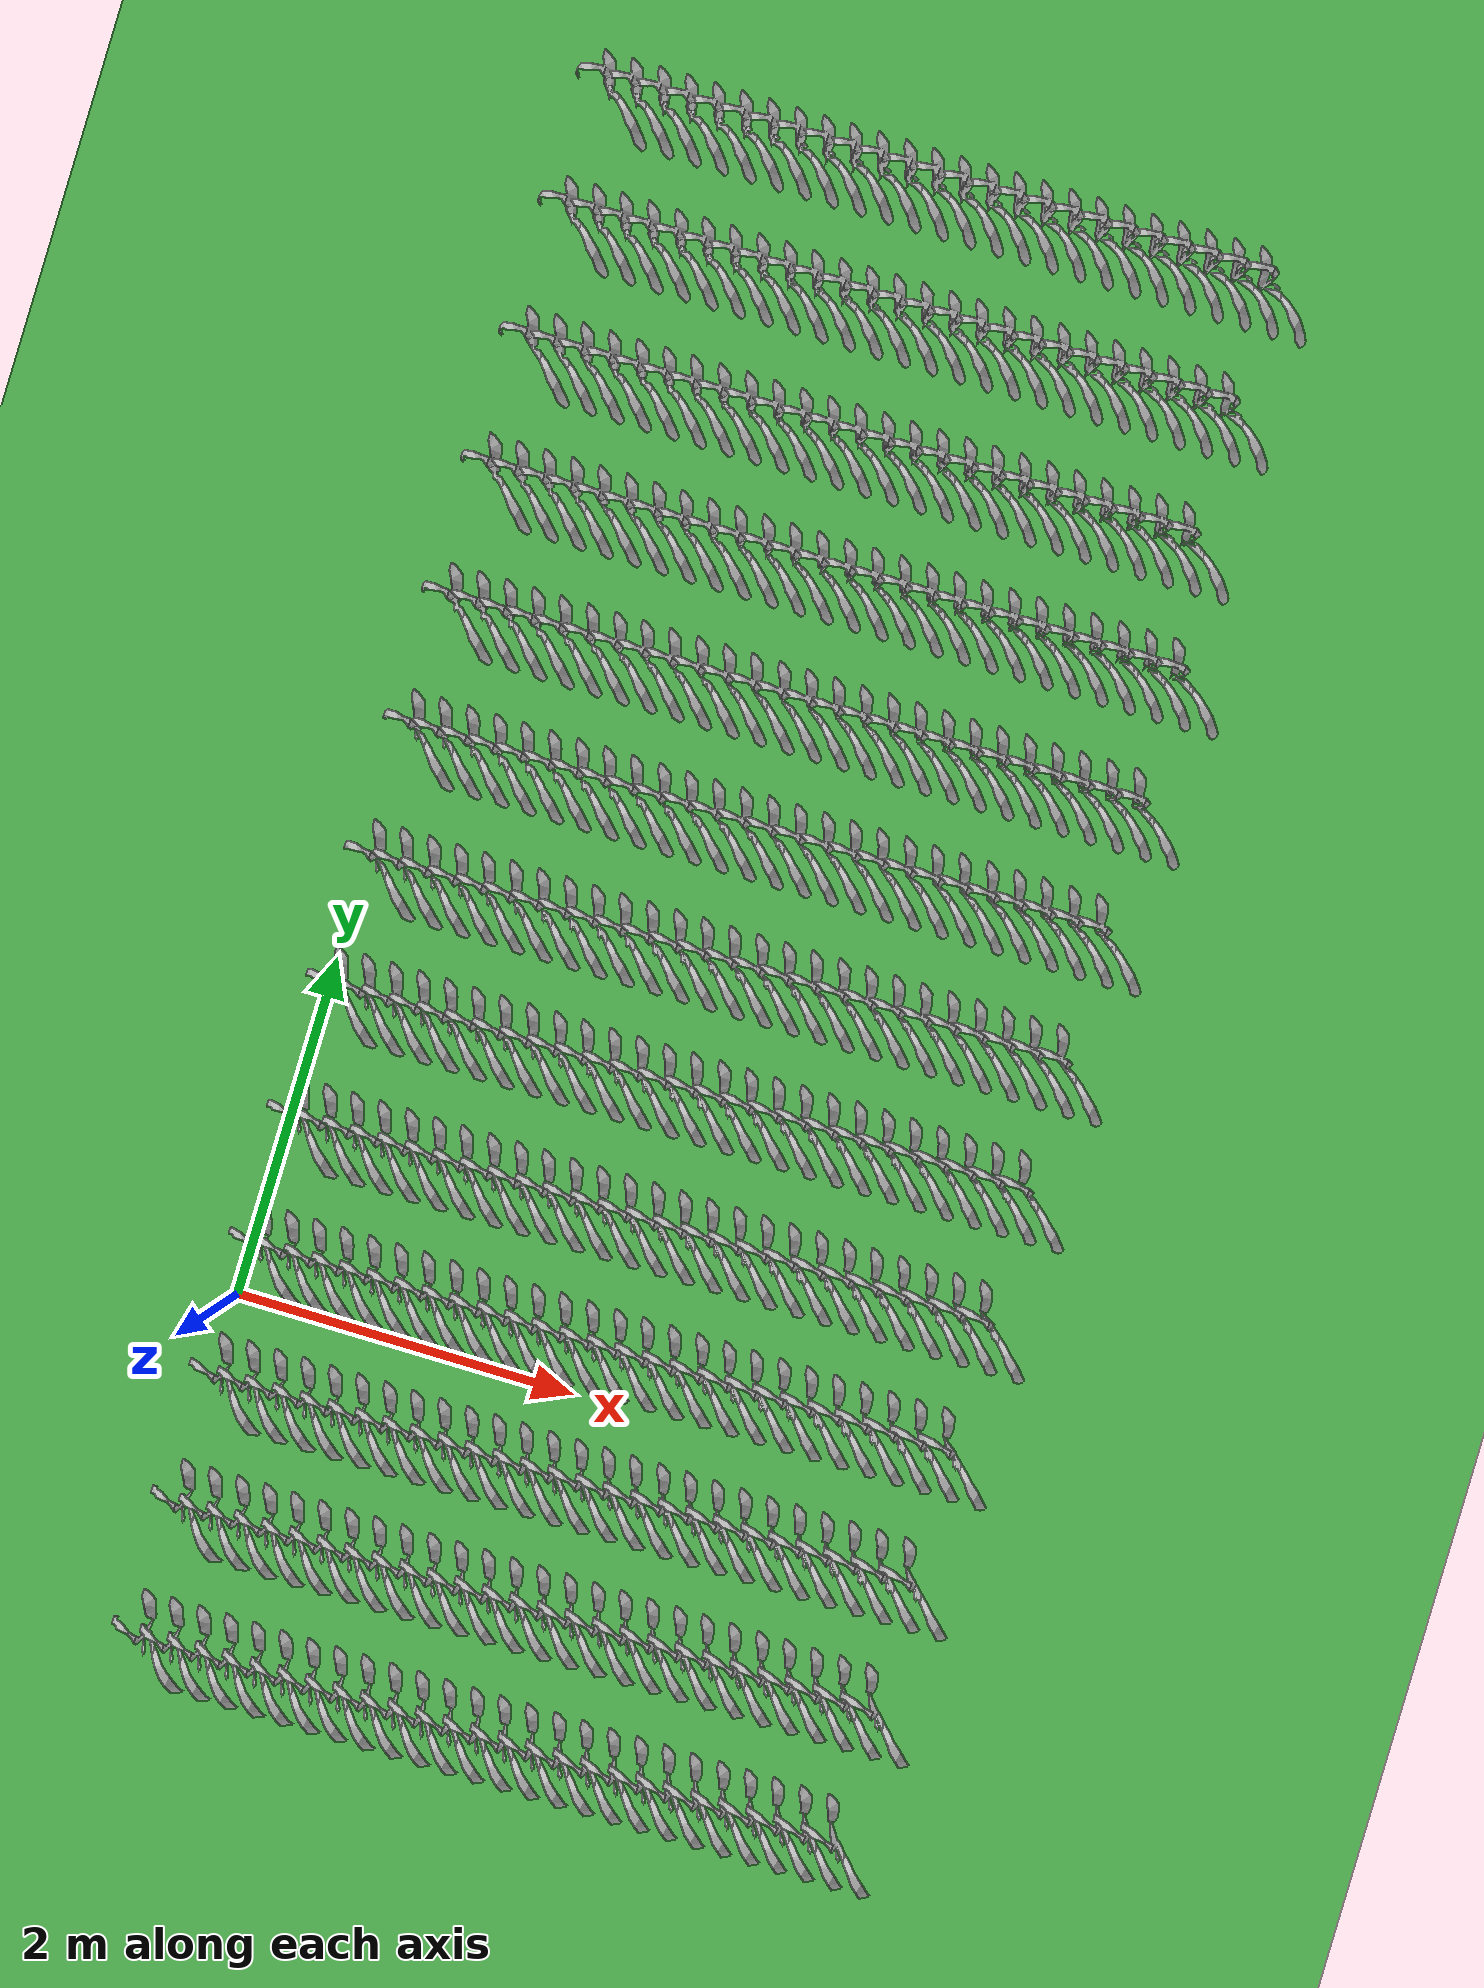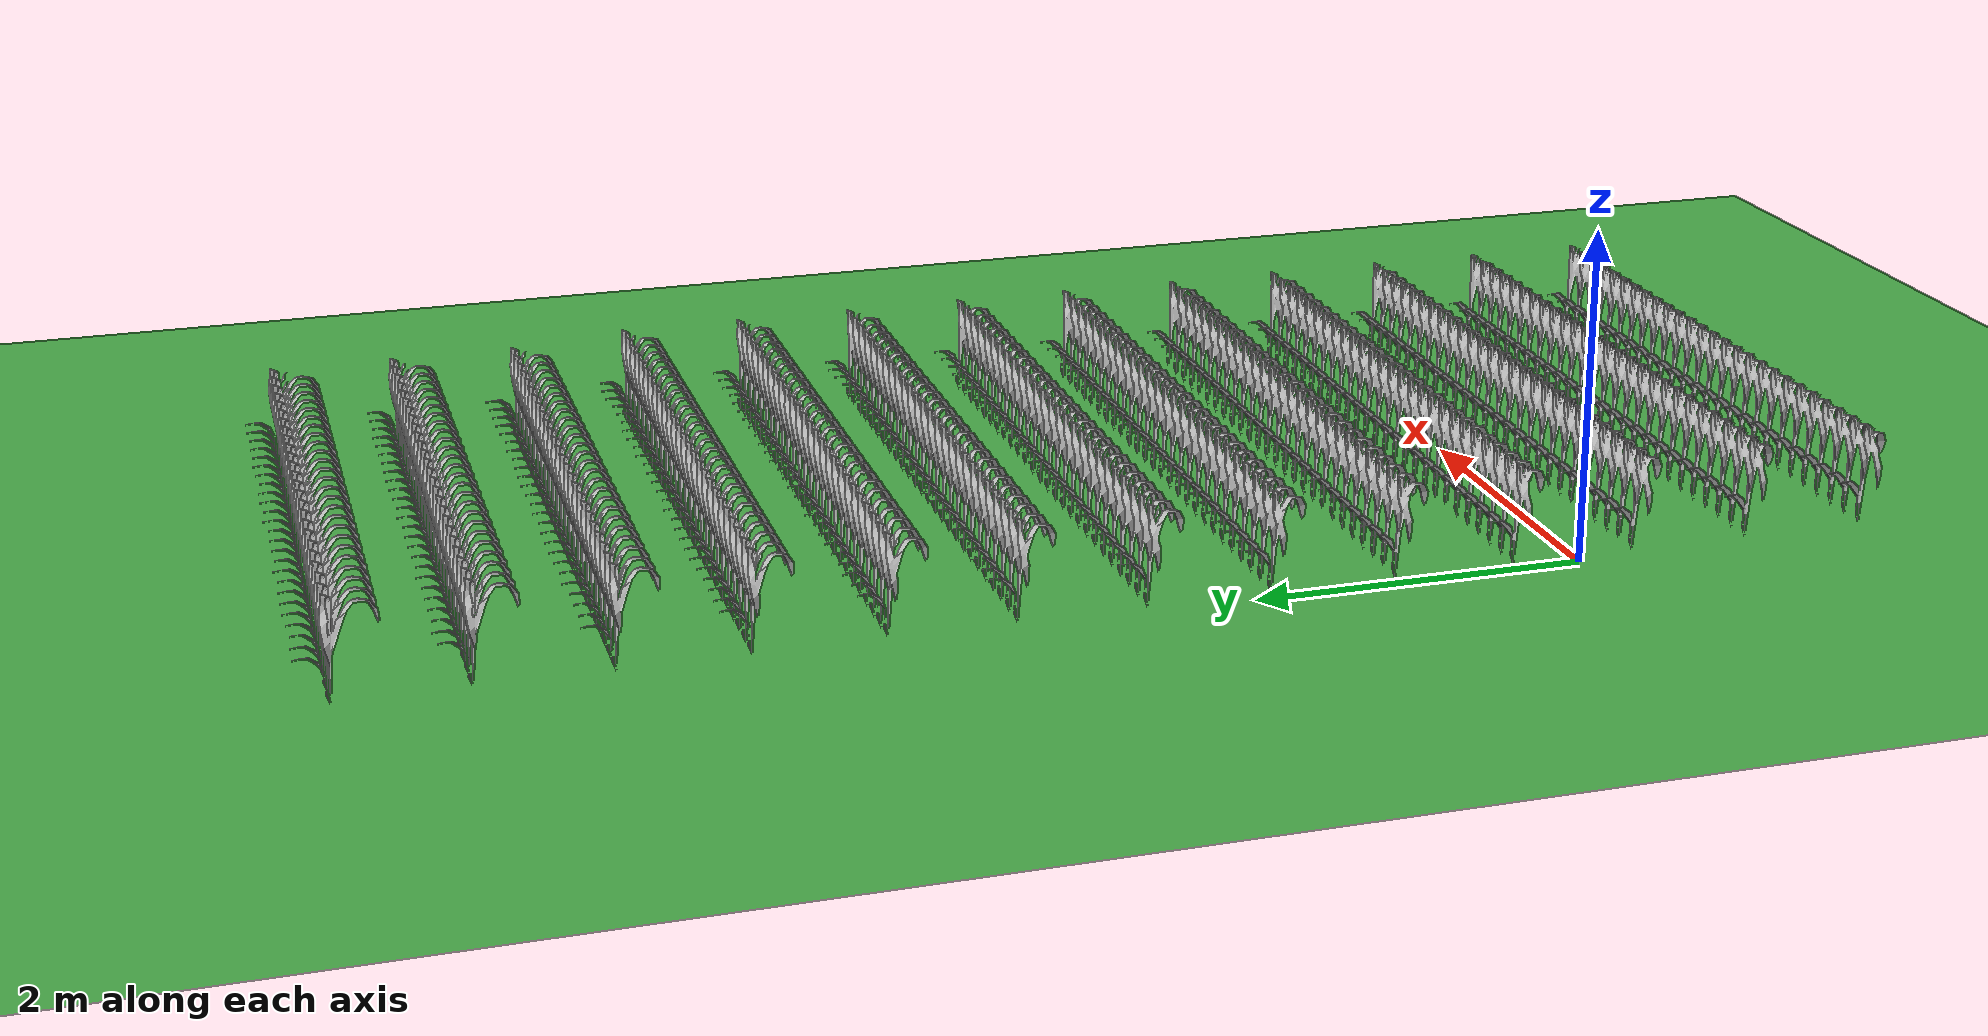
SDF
<sdf version="1.9">
 <world name="farm_world">
  <model name="ground_plane">
   <static>true</static>
   <link name="link">
    <collision name="collision">
     <geometry><plane><normal>0 0 1</normal><size>100 100</size></plane></geometry>
    </collision>
    <visual name="visual">
     <geometry><plane><normal>0 0 1</normal><size>100 100</size></plane></geometry>
     <material>
      <ambient>0.2 0.6 0.2 1</ambient>
      <diffuse>0.3 0.7 0.3 1</diffuse>
      <specular>0.1 0.1 0.1 1</specular>
     </material>
    </visual>
   </link>
  </model>
  <include><uri>model://maize_01</uri><name>maize_750</name><pose>0.08 -1.88 0 0 0 0</pose></include>
  <include><uri>model://maize_01</uri><name>maize_751</name><pose>0.24 -1.88 0 0 0 0</pose></include>
  <include><uri>model://maize_01</uri><name>maize_752</name><pose>0.40 -1.88 0 0 0 0</pose></include>
  <include><uri>model://maize_01</uri><name>maize_753</name><pose>0.56 -1.88 0 0 0 0</pose></include>
  <include><uri>model://maize_01</uri><name>maize_754</name><pose>0.72 -1.88 0 0 0 0</pose></include>
  <include><uri>model://maize_01</uri><name>maize_755</name><pose>0.88 -1.88 0 0 0 0</pose></include>
  <include><uri>model://maize_01</uri><name>maize_756</name><pose>1.04 -1.88 0 0 0 0</pose></include>
  <include><uri>model://maize_01</uri><name>maize_757</name><pose>1.20 -1.88 0 0 0 0</pose></include>
  <include><uri>model://maize_01</uri><name>maize_758</name><pose>1.36 -1.88 0 0 0 0</pose></include>
  <include><uri>model://maize_01</uri><name>maize_759</name><pose>1.52 -1.88 0 0 0 0</pose></include>
  <include><uri>model://maize_01</uri><name>maize_760</name><pose>1.68 -1.88 0 0 0 0</pose></include>
  <include><uri>model://maize_01</uri><name>maize_761</name><pose>1.84 -1.88 0 0 0 0</pose></include>
  <include><uri>model://maize_01</uri><name>maize_762</name><pose>2.00 -1.88 0 0 0 0</pose></include>
  <include><uri>model://maize_01</uri><name>maize_763</name><pose>2.16 -1.88 0 0 0 0</pose></include>
  <include><uri>model://maize_01</uri><name>maize_764</name><pose>2.32 -1.88 0 0 0 0</pose></include>
  <include><uri>model://maize_01</uri><name>maize_765</name><pose>2.48 -1.88 0 0 0 0</pose></include>
  <include><uri>model://maize_01</uri><name>maize_766</name><pose>2.64 -1.88 0 0 0 0</pose></include>
  <include><uri>model://maize_01</uri><name>maize_767</name><pose>2.80 -1.88 0 0 0 0</pose></include>
  <include><uri>model://maize_01</uri><name>maize_768</name><pose>2.96 -1.88 0 0 0 0</pose></include>
  <include><uri>model://maize_01</uri><name>maize_769</name><pose>3.12 -1.88 0 0 0 0</pose></include>
  <include><uri>model://maize_01</uri><name>maize_770</name><pose>3.28 -1.88 0 0 0 0</pose></include>
  <include><uri>model://maize_01</uri><name>maize_771</name><pose>3.44 -1.88 0 0 0 0</pose></include>
  <include><uri>model://maize_01</uri><name>maize_772</name><pose>3.60 -1.88 0 0 0 0</pose></include>
  <include><uri>model://maize_01</uri><name>maize_773</name><pose>3.76 -1.88 0 0 0 0</pose></include>
  <include><uri>model://maize_01</uri><name>maize_774</name><pose>3.92 -1.88 0 0 0 0</pose></include>
  <include><uri>model://maize_01</uri><name>maize_775</name><pose>4.08 -1.88 0 0 0 0</pose></include>
  <include><uri>model://maize_01</uri><name>maize_850</name><pose>0.08 -1.12 0 0 0 0</pose></include>
  <include><uri>model://maize_01</uri><name>maize_851</name><pose>0.24 -1.12 0 0 0 0</pose></include>
  <include><uri>model://maize_01</uri><name>maize_852</name><pose>0.40 -1.12 0 0 0 0</pose></include>
  <include><uri>model://maize_01</uri><name>maize_853</name><pose>0.56 -1.12 0 0 0 0</pose></include>
  <include><uri>model://maize_01</uri><name>maize_854</name><pose>0.72 -1.12 0 0 0 0</pose></include>
  <include><uri>model://maize_01</uri><name>maize_855</name><pose>0.88 -1.12 0 0 0 0</pose></include>
  <include><uri>model://maize_01</uri><name>maize_856</name><pose>1.04 -1.12 0 0 0 0</pose></include>
  <include><uri>model://maize_01</uri><name>maize_857</name><pose>1.20 -1.12 0 0 0 0</pose></include>
  <include><uri>model://maize_01</uri><name>maize_858</name><pose>1.36 -1.12 0 0 0 0</pose></include>
  <include><uri>model://maize_01</uri><name>maize_859</name><pose>1.52 -1.12 0 0 0 0</pose></include>
  <include><uri>model://maize_01</uri><name>maize_860</name><pose>1.68 -1.12 0 0 0 0</pose></include>
  <include><uri>model://maize_01</uri><name>maize_861</name><pose>1.84 -1.12 0 0 0 0</pose></include>
  <include><uri>model://maize_01</uri><name>maize_862</name><pose>2.00 -1.12 0 0 0 0</pose></include>
  <include><uri>model://maize_01</uri><name>maize_863</name><pose>2.16 -1.12 0 0 0 0</pose></include>
  <include><uri>model://maize_01</uri><name>maize_864</name><pose>2.32 -1.12 0 0 0 0</pose></include>
  <include><uri>model://maize_01</uri><name>maize_865</name><pose>2.48 -1.12 0 0 0 0</pose></include>
  <include><uri>model://maize_01</uri><name>maize_866</name><pose>2.64 -1.12 0 0 0 0</pose></include>
  <include><uri>model://maize_01</uri><name>maize_867</name><pose>2.80 -1.12 0 0 0 0</pose></include>
  <include><uri>model://maize_01</uri><name>maize_868</name><pose>2.96 -1.12 0 0 0 0</pose></include>
  <include><uri>model://maize_01</uri><name>maize_869</name><pose>3.12 -1.12 0 0 0 0</pose></include>
  <include><uri>model://maize_01</uri><name>maize_870</name><pose>3.28 -1.12 0 0 0 0</pose></include>
  <include><uri>model://maize_01</uri><name>maize_871</name><pose>3.44 -1.12 0 0 0 0</pose></include>
  <include><uri>model://maize_01</uri><name>maize_872</name><pose>3.60 -1.12 0 0 0 0</pose></include>
  <include><uri>model://maize_01</uri><name>maize_873</name><pose>3.76 -1.12 0 0 0 0</pose></include>
  <include><uri>model://maize_01</uri><name>maize_874</name><pose>3.92 -1.12 0 0 0 0</pose></include>
  <include><uri>model://maize_01</uri><name>maize_875</name><pose>4.08 -1.12 0 0 0 0</pose></include>
  <include><uri>model://maize_01</uri><name>maize_950</name><pose>0.08 -0.38 0 0 0 0</pose></include>
  <include><uri>model://maize_01</uri><name>maize_951</name><pose>0.24 -0.38 0 0 0 0</pose></include>
  <include><uri>model://maize_01</uri><name>maize_952</name><pose>0.40 -0.38 0 0 0 0</pose></include>
  <include><uri>model://maize_01</uri><name>maize_953</name><pose>0.56 -0.38 0 0 0 0</pose></include>
  <include><uri>model://maize_01</uri><name>maize_954</name><pose>0.72 -0.38 0 0 0 0</pose></include>
  <include><uri>model://maize_01</uri><name>maize_955</name><pose>0.88 -0.38 0 0 0 0</pose></include>
  <include><uri>model://maize_01</uri><name>maize_956</name><pose>1.04 -0.38 0 0 0 0</pose></include>
  <include><uri>model://maize_01</uri><name>maize_957</name><pose>1.20 -0.38 0 0 0 0</pose></include>
  <include><uri>model://maize_01</uri><name>maize_958</name><pose>1.36 -0.38 0 0 0 0</pose></include>
  <include><uri>model://maize_01</uri><name>maize_959</name><pose>1.52 -0.38 0 0 0 0</pose></include>
  <include><uri>model://maize_01</uri><name>maize_960</name><pose>1.68 -0.38 0 0 0 0</pose></include>
  <include><uri>model://maize_01</uri><name>maize_961</name><pose>1.84 -0.38 0 0 0 0</pose></include>
  <include><uri>model://maize_01</uri><name>maize_962</name><pose>2.00 -0.38 0 0 0 0</pose></include>
  <include><uri>model://maize_01</uri><name>maize_963</name><pose>2.16 -0.38 0 0 0 0</pose></include>
  <include><uri>model://maize_01</uri><name>maize_964</name><pose>2.32 -0.38 0 0 0 0</pose></include>
  <include><uri>model://maize_01</uri><name>maize_965</name><pose>2.48 -0.38 0 0 0 0</pose></include>
  <include><uri>model://maize_01</uri><name>maize_966</name><pose>2.64 -0.38 0 0 0 0</pose></include>
  <include><uri>model://maize_01</uri><name>maize_967</name><pose>2.80 -0.38 0 0 0 0</pose></include>
  <include><uri>model://maize_01</uri><name>maize_968</name><pose>2.96 -0.38 0 0 0 0</pose></include>
  <include><uri>model://maize_01</uri><name>maize_969</name><pose>3.12 -0.38 0 0 0 0</pose></include>
  <include><uri>model://maize_01</uri><name>maize_970</name><pose>3.28 -0.38 0 0 0 0</pose></include>
  <include><uri>model://maize_01</uri><name>maize_971</name><pose>3.44 -0.38 0 0 0 0</pose></include>
  <include><uri>model://maize_01</uri><name>maize_972</name><pose>3.60 -0.38 0 0 0 0</pose></include>
  <include><uri>model://maize_01</uri><name>maize_973</name><pose>3.76 -0.38 0 0 0 0</pose></include>
  <include><uri>model://maize_01</uri><name>maize_974</name><pose>3.92 -0.38 0 0 0 0</pose></include>
  <include><uri>model://maize_01</uri><name>maize_975</name><pose>4.08 -0.38 0 0 0 0</pose></include>
  <include><uri>model://maize_01</uri><name>maize_1050</name><pose>0.08 0.38 0 0 0 0</pose></include>
  <include><uri>model://maize_01</uri><name>maize_1051</name><pose>0.24 0.38 0 0 0 0</pose></include>
  <include><uri>model://maize_01</uri><name>maize_1052</name><pose>0.40 0.38 0 0 0 0</pose></include>
  <include><uri>model://maize_01</uri><name>maize_1053</name><pose>0.56 0.38 0 0 0 0</pose></include>
  <include><uri>model://maize_01</uri><name>maize_1054</name><pose>0.72 0.38 0 0 0 0</pose></include>
  <include><uri>model://maize_01</uri><name>maize_1055</name><pose>0.88 0.38 0 0 0 0</pose></include>
  <include><uri>model://maize_01</uri><name>maize_1056</name><pose>1.04 0.38 0 0 0 0</pose></include>
  <include><uri>model://maize_01</uri><name>maize_1057</name><pose>1.20 0.38 0 0 0 0</pose></include>
  <include><uri>model://maize_01</uri><name>maize_1058</name><pose>1.36 0.38 0 0 0 0</pose></include>
  <include><uri>model://maize_01</uri><name>maize_1059</name><pose>1.52 0.38 0 0 0 0</pose></include>
  <include><uri>model://maize_01</uri><name>maize_1060</name><pose>1.68 0.38 0 0 0 0</pose></include>
  <include><uri>model://maize_01</uri><name>maize_1061</name><pose>1.84 0.38 0 0 0 0</pose></include>
  <include><uri>model://maize_01</uri><name>maize_1062</name><pose>2.00 0.38 0 0 0 0</pose></include>
  <include><uri>model://maize_01</uri><name>maize_1063</name><pose>2.16 0.38 0 0 0 0</pose></include>
  <include><uri>model://maize_01</uri><name>maize_1064</name><pose>2.32 0.38 0 0 0 0</pose></include>
  <include><uri>model://maize_01</uri><name>maize_1065</name><pose>2.48 0.38 0 0 0 0</pose></include>
  <include><uri>model://maize_01</uri><name>maize_1066</name><pose>2.64 0.38 0 0 0 0</pose></include>
  <include><uri>model://maize_01</uri><name>maize_1067</name><pose>2.80 0.38 0 0 0 0</pose></include>
  <include><uri>model://maize_01</uri><name>maize_1068</name><pose>2.96 0.38 0 0 0 0</pose></include>
  <include><uri>model://maize_01</uri><name>maize_1069</name><pose>3.12 0.38 0 0 0 0</pose></include>
  <include><uri>model://maize_01</uri><name>maize_1070</name><pose>3.28 0.38 0 0 0 0</pose></include>
  <include><uri>model://maize_01</uri><name>maize_1071</name><pose>3.44 0.38 0 0 0 0</pose></include>
  <include><uri>model://maize_01</uri><name>maize_1072</name><pose>3.60 0.38 0 0 0 0</pose></include>
  <include><uri>model://maize_01</uri><name>maize_1073</name><pose>3.76 0.38 0 0 0 0</pose></include>
  <include><uri>model://maize_01</uri><name>maize_1074</name><pose>3.92 0.38 0 0 0 0</pose></include>
  <include><uri>model://maize_01</uri><name>maize_1075</name><pose>4.08 0.38 0 0 0 0</pose></include>
  <include><uri>model://maize_01</uri><name>maize_1150</name><pose>0.08 1.12 0 0 0 0</pose></include>
  <include><uri>model://maize_01</uri><name>maize_1151</name><pose>0.24 1.12 0 0 0 0</pose></include>
  <include><uri>model://maize_01</uri><name>maize_1152</name><pose>0.40 1.12 0 0 0 0</pose></include>
  <include><uri>model://maize_01</uri><name>maize_1153</name><pose>0.56 1.12 0 0 0 0</pose></include>
  <include><uri>model://maize_01</uri><name>maize_1154</name><pose>0.72 1.12 0 0 0 0</pose></include>
  <include><uri>model://maize_01</uri><name>maize_1155</name><pose>0.88 1.12 0 0 0 0</pose></include>
  <include><uri>model://maize_01</uri><name>maize_1156</name><pose>1.04 1.12 0 0 0 0</pose></include>
  <include><uri>model://maize_01</uri><name>maize_1157</name><pose>1.20 1.12 0 0 0 0</pose></include>
  <include><uri>model://maize_01</uri><name>maize_1158</name><pose>1.36 1.12 0 0 0 0</pose></include>
  <include><uri>model://maize_01</uri><name>maize_1159</name><pose>1.52 1.12 0 0 0 0</pose></include>
  <include><uri>model://maize_01</uri><name>maize_1160</name><pose>1.68 1.12 0 0 0 0</pose></include>
  <include><uri>model://maize_01</uri><name>maize_1161</name><pose>1.84 1.12 0 0 0 0</pose></include>
  <include><uri>model://maize_01</uri><name>maize_1162</name><pose>2.00 1.12 0 0 0 0</pose></include>
  <include><uri>model://maize_01</uri><name>maize_1163</name><pose>2.16 1.12 0 0 0 0</pose></include>
  <include><uri>model://maize_01</uri><name>maize_1164</name><pose>2.32 1.12 0 0 0 0</pose></include>
  <include><uri>model://maize_01</uri><name>maize_1165</name><pose>2.48 1.12 0 0 0 0</pose></include>
  <include><uri>model://maize_01</uri><name>maize_1166</name><pose>2.64 1.12 0 0 0 0</pose></include>
  <include><uri>model://maize_01</uri><name>maize_1167</name><pose>2.80 1.12 0 0 0 0</pose></include>
  <include><uri>model://maize_01</uri><name>maize_1168</name><pose>2.96 1.12 0 0 0 0</pose></include>
  <include><uri>model://maize_01</uri><name>maize_1169</name><pose>3.12 1.12 0 0 0 0</pose></include>
  <include><uri>model://maize_01</uri><name>maize_1170</name><pose>3.28 1.12 0 0 0 0</pose></include>
  <include><uri>model://maize_01</uri><name>maize_1171</name><pose>3.44 1.12 0 0 0 0</pose></include>
  <include><uri>model://maize_01</uri><name>maize_1172</name><pose>3.60 1.12 0 0 0 0</pose></include>
  <include><uri>model://maize_01</uri><name>maize_1173</name><pose>3.76 1.12 0 0 0 0</pose></include>
  <include><uri>model://maize_01</uri><name>maize_1174</name><pose>3.92 1.12 0 0 0 0</pose></include>
  <include><uri>model://maize_01</uri><name>maize_1175</name><pose>4.08 1.12 0 0 0 0</pose></include>
  <include><uri>model://maize_01</uri><name>maize_1250</name><pose>0.08 1.88 0 0 0 0</pose></include>
  <include><uri>model://maize_01</uri><name>maize_1251</name><pose>0.24 1.88 0 0 0 0</pose></include>
  <include><uri>model://maize_01</uri><name>maize_1252</name><pose>0.40 1.88 0 0 0 0</pose></include>
  <include><uri>model://maize_01</uri><name>maize_1253</name><pose>0.56 1.88 0 0 0 0</pose></include>
  <include><uri>model://maize_01</uri><name>maize_1254</name><pose>0.72 1.88 0 0 0 0</pose></include>
  <include><uri>model://maize_01</uri><name>maize_1255</name><pose>0.88 1.88 0 0 0 0</pose></include>
  <include><uri>model://maize_01</uri><name>maize_1256</name><pose>1.04 1.88 0 0 0 0</pose></include>
  <include><uri>model://maize_01</uri><name>maize_1257</name><pose>1.20 1.88 0 0 0 0</pose></include>
  <include><uri>model://maize_01</uri><name>maize_1258</name><pose>1.36 1.88 0 0 0 0</pose></include>
  <include><uri>model://maize_01</uri><name>maize_1259</name><pose>1.52 1.88 0 0 0 0</pose></include>
  <include><uri>model://maize_01</uri><name>maize_1260</name><pose>1.68 1.88 0 0 0 0</pose></include>
  <include><uri>model://maize_01</uri><name>maize_1261</name><pose>1.84 1.88 0 0 0 0</pose></include>
  <include><uri>model://maize_01</uri><name>maize_1262</name><pose>2.00 1.88 0 0 0 0</pose></include>
  <include><uri>model://maize_01</uri><name>maize_1263</name><pose>2.16 1.88 0 0 0 0</pose></include>
  <include><uri>model://maize_01</uri><name>maize_1264</name><pose>2.32 1.88 0 0 0 0</pose></include>
  <include><uri>model://maize_01</uri><name>maize_1265</name><pose>2.48 1.88 0 0 0 0</pose></include>
  <include><uri>model://maize_01</uri><name>maize_1266</name><pose>2.64 1.88 0 0 0 0</pose></include>
  <include><uri>model://maize_01</uri><name>maize_1267</name><pose>2.80 1.88 0 0 0 0</pose></include>
  <include><uri>model://maize_01</uri><name>maize_1268</name><pose>2.96 1.88 0 0 0 0</pose></include>
  <include><uri>model://maize_01</uri><name>maize_1269</name><pose>3.12 1.88 0 0 0 0</pose></include>
  <include><uri>model://maize_01</uri><name>maize_1270</name><pose>3.28 1.88 0 0 0 0</pose></include>
  <include><uri>model://maize_01</uri><name>maize_1271</name><pose>3.44 1.88 0 0 0 0</pose></include>
  <include><uri>model://maize_01</uri><name>maize_1272</name><pose>3.60 1.88 0 0 0 0</pose></include>
  <include><uri>model://maize_01</uri><name>maize_1273</name><pose>3.76 1.88 0 0 0 0</pose></include>
  <include><uri>model://maize_01</uri><name>maize_1274</name><pose>3.92 1.88 0 0 0 0</pose></include>
  <include><uri>model://maize_01</uri><name>maize_1275</name><pose>4.08 1.88 0 0 0 0</pose></include>
  <include><uri>model://maize_01</uri><name>maize_1350</name><pose>0.08 2.62 0 0 0 0</pose></include>
  <include><uri>model://maize_01</uri><name>maize_1351</name><pose>0.24 2.62 0 0 0 0</pose></include>
  <include><uri>model://maize_01</uri><name>maize_1352</name><pose>0.40 2.62 0 0 0 0</pose></include>
  <include><uri>model://maize_01</uri><name>maize_1353</name><pose>0.56 2.62 0 0 0 0</pose></include>
  <include><uri>model://maize_01</uri><name>maize_1354</name><pose>0.72 2.62 0 0 0 0</pose></include>
  <include><uri>model://maize_01</uri><name>maize_1355</name><pose>0.88 2.62 0 0 0 0</pose></include>
  <include><uri>model://maize_01</uri><name>maize_1356</name><pose>1.04 2.62 0 0 0 0</pose></include>
  <include><uri>model://maize_01</uri><name>maize_1357</name><pose>1.20 2.62 0 0 0 0</pose></include>
  <include><uri>model://maize_01</uri><name>maize_1358</name><pose>1.36 2.62 0 0 0 0</pose></include>
  <include><uri>model://maize_01</uri><name>maize_1359</name><pose>1.52 2.62 0 0 0 0</pose></include>
  <include><uri>model://maize_01</uri><name>maize_1360</name><pose>1.68 2.62 0 0 0 0</pose></include>
  <include><uri>model://maize_01</uri><name>maize_1361</name><pose>1.84 2.62 0 0 0 0</pose></include>
  <include><uri>model://maize_01</uri><name>maize_1362</name><pose>2.00 2.62 0 0 0 0</pose></include>
  <include><uri>model://maize_01</uri><name>maize_1363</name><pose>2.16 2.62 0 0 0 0</pose></include>
  <include><uri>model://maize_01</uri><name>maize_1364</name><pose>2.32 2.62 0 0 0 0</pose></include>
  <include><uri>model://maize_01</uri><name>maize_1365</name><pose>2.48 2.62 0 0 0 0</pose></include>
  <include><uri>model://maize_01</uri><name>maize_1366</name><pose>2.64 2.62 0 0 0 0</pose></include>
  <include><uri>model://maize_01</uri><name>maize_1367</name><pose>2.80 2.62 0 0 0 0</pose></include>
  <include><uri>model://maize_01</uri><name>maize_1368</name><pose>2.96 2.62 0 0 0 0</pose></include>
  <include><uri>model://maize_01</uri><name>maize_1369</name><pose>3.12 2.62 0 0 0 0</pose></include>
  <include><uri>model://maize_01</uri><name>maize_1370</name><pose>3.28 2.62 0 0 0 0</pose></include>
  <include><uri>model://maize_01</uri><name>maize_1371</name><pose>3.44 2.62 0 0 0 0</pose></include>
  <include><uri>model://maize_01</uri><name>maize_1372</name><pose>3.60 2.62 0 0 0 0</pose></include>
  <include><uri>model://maize_01</uri><name>maize_1373</name><pose>3.76 2.62 0 0 0 0</pose></include>
  <include><uri>model://maize_01</uri><name>maize_1374</name><pose>3.92 2.62 0 0 0 0</pose></include>
  <include><uri>model://maize_01</uri><name>maize_1375</name><pose>4.08 2.62 0 0 0 0</pose></include>
  <include><uri>model://maize_01</uri><name>maize_1450</name><pose>0.08 3.38 0 0 0 0</pose></include>
  <include><uri>model://maize_01</uri><name>maize_1451</name><pose>0.24 3.38 0 0 0 0</pose></include>
  <include><uri>model://maize_01</uri><name>maize_1452</name><pose>0.40 3.38 0 0 0 0</pose></include>
  <include><uri>model://maize_01</uri><name>maize_1453</name><pose>0.56 3.38 0 0 0 0</pose></include>
  <include><uri>model://maize_01</uri><name>maize_1454</name><pose>0.72 3.38 0 0 0 0</pose></include>
  <include><uri>model://maize_01</uri><name>maize_1455</name><pose>0.88 3.38 0 0 0 0</pose></include>
  <include><uri>model://maize_01</uri><name>maize_1456</name><pose>1.04 3.38 0 0 0 0</pose></include>
  <include><uri>model://maize_01</uri><name>maize_1457</name><pose>1.20 3.38 0 0 0 0</pose></include>
  <include><uri>model://maize_01</uri><name>maize_1458</name><pose>1.36 3.38 0 0 0 0</pose></include>
  <include><uri>model://maize_01</uri><name>maize_1459</name><pose>1.52 3.38 0 0 0 0</pose></include>
  <include><uri>model://maize_01</uri><name>maize_1460</name><pose>1.68 3.38 0 0 0 0</pose></include>
  <include><uri>model://maize_01</uri><name>maize_1461</name><pose>1.84 3.38 0 0 0 0</pose></include>
  <include><uri>model://maize_01</uri><name>maize_1462</name><pose>2.00 3.38 0 0 0 0</pose></include>
  <include><uri>model://maize_01</uri><name>maize_1463</name><pose>2.16 3.38 0 0 0 0</pose></include>
  <include><uri>model://maize_01</uri><name>maize_1464</name><pose>2.32 3.38 0 0 0 0</pose></include>
  <include><uri>model://maize_01</uri><name>maize_1465</name><pose>2.48 3.38 0 0 0 0</pose></include>
  <include><uri>model://maize_01</uri><name>maize_1466</name><pose>2.64 3.38 0 0 0 0</pose></include>
  <include><uri>model://maize_01</uri><name>maize_1467</name><pose>2.80 3.38 0 0 0 0</pose></include>
  <include><uri>model://maize_01</uri><name>maize_1468</name><pose>2.96 3.38 0 0 0 0</pose></include>
  <include><uri>model://maize_01</uri><name>maize_1469</name><pose>3.12 3.38 0 0 0 0</pose></include>
  <include><uri>model://maize_01</uri><name>maize_1470</name><pose>3.28 3.38 0 0 0 0</pose></include>
  <include><uri>model://maize_01</uri><name>maize_1471</name><pose>3.44 3.38 0 0 0 0</pose></include>
  <include><uri>model://maize_01</uri><name>maize_1472</name><pose>3.60 3.38 0 0 0 0</pose></include>
  <include><uri>model://maize_01</uri><name>maize_1473</name><pose>3.76 3.38 0 0 0 0</pose></include>
  <include><uri>model://maize_01</uri><name>maize_1474</name><pose>3.92 3.38 0 0 0 0</pose></include>
  <include><uri>model://maize_01</uri><name>maize_1475</name><pose>4.08 3.38 0 0 0 0</pose></include>
  <include><uri>model://maize_01</uri><name>maize_1550</name><pose>0.08 4.12 0 0 0 0</pose></include>
  <include><uri>model://maize_01</uri><name>maize_1551</name><pose>0.24 4.12 0 0 0 0</pose></include>
  <include><uri>model://maize_01</uri><name>maize_1552</name><pose>0.40 4.12 0 0 0 0</pose></include>
  <include><uri>model://maize_01</uri><name>maize_1553</name><pose>0.56 4.12 0 0 0 0</pose></include>
  <include><uri>model://maize_01</uri><name>maize_1554</name><pose>0.72 4.12 0 0 0 0</pose></include>
  <include><uri>model://maize_01</uri><name>maize_1555</name><pose>0.88 4.12 0 0 0 0</pose></include>
  <include><uri>model://maize_01</uri><name>maize_1556</name><pose>1.04 4.12 0 0 0 0</pose></include>
  <include><uri>model://maize_01</uri><name>maize_1557</name><pose>1.20 4.12 0 0 0 0</pose></include>
  <include><uri>model://maize_01</uri><name>maize_1558</name><pose>1.36 4.12 0 0 0 0</pose></include>
  <include><uri>model://maize_01</uri><name>maize_1559</name><pose>1.52 4.12 0 0 0 0</pose></include>
  <include><uri>model://maize_01</uri><name>maize_1560</name><pose>1.68 4.12 0 0 0 0</pose></include>
  <include><uri>model://maize_01</uri><name>maize_1561</name><pose>1.84 4.12 0 0 0 0</pose></include>
  <include><uri>model://maize_01</uri><name>maize_1562</name><pose>2.00 4.12 0 0 0 0</pose></include>
  <include><uri>model://maize_01</uri><name>maize_1563</name><pose>2.16 4.12 0 0 0 0</pose></include>
  <include><uri>model://maize_01</uri><name>maize_1564</name><pose>2.32 4.12 0 0 0 0</pose></include>
  <include><uri>model://maize_01</uri><name>maize_1565</name><pose>2.48 4.12 0 0 0 0</pose></include>
  <include><uri>model://maize_01</uri><name>maize_1566</name><pose>2.64 4.12 0 0 0 0</pose></include>
  <include><uri>model://maize_01</uri><name>maize_1567</name><pose>2.80 4.12 0 0 0 0</pose></include>
  <include><uri>model://maize_01</uri><name>maize_1568</name><pose>2.96 4.12 0 0 0 0</pose></include>
  <include><uri>model://maize_01</uri><name>maize_1569</name><pose>3.12 4.12 0 0 0 0</pose></include>
  <include><uri>model://maize_01</uri><name>maize_1570</name><pose>3.28 4.12 0 0 0 0</pose></include>
  <include><uri>model://maize_01</uri><name>maize_1571</name><pose>3.44 4.12 0 0 0 0</pose></include>
  <include><uri>model://maize_01</uri><name>maize_1572</name><pose>3.60 4.12 0 0 0 0</pose></include>
  <include><uri>model://maize_01</uri><name>maize_1573</name><pose>3.76 4.12 0 0 0 0</pose></include>
  <include><uri>model://maize_01</uri><name>maize_1574</name><pose>3.92 4.12 0 0 0 0</pose></include>
  <include><uri>model://maize_01</uri><name>maize_1575</name><pose>4.08 4.12 0 0 0 0</pose></include>
  <include><uri>model://maize_01</uri><name>maize_1650</name><pose>0.08 4.88 0 0 0 0</pose></include>
  <include><uri>model://maize_01</uri><name>maize_1651</name><pose>0.24 4.88 0 0 0 0</pose></include>
  <include><uri>model://maize_01</uri><name>maize_1652</name><pose>0.40 4.88 0 0 0 0</pose></include>
  <include><uri>model://maize_01</uri><name>maize_1653</name><pose>0.56 4.88 0 0 0 0</pose></include>
  <include><uri>model://maize_01</uri><name>maize_1654</name><pose>0.72 4.88 0 0 0 0</pose></include>
  <include><uri>model://maize_01</uri><name>maize_1655</name><pose>0.88 4.88 0 0 0 0</pose></include>
  <include><uri>model://maize_01</uri><name>maize_1656</name><pose>1.04 4.88 0 0 0 0</pose></include>
  <include><uri>model://maize_01</uri><name>maize_1657</name><pose>1.20 4.88 0 0 0 0</pose></include>
  <include><uri>model://maize_01</uri><name>maize_1658</name><pose>1.36 4.88 0 0 0 0</pose></include>
  <include><uri>model://maize_01</uri><name>maize_1659</name><pose>1.52 4.88 0 0 0 0</pose></include>
  <include><uri>model://maize_01</uri><name>maize_1660</name><pose>1.68 4.88 0 0 0 0</pose></include>
  <include><uri>model://maize_01</uri><name>maize_1661</name><pose>1.84 4.88 0 0 0 0</pose></include>
  <include><uri>model://maize_01</uri><name>maize_1662</name><pose>2.00 4.88 0 0 0 0</pose></include>
  <include><uri>model://maize_01</uri><name>maize_1663</name><pose>2.16 4.88 0 0 0 0</pose></include>
  <include><uri>model://maize_01</uri><name>maize_1664</name><pose>2.32 4.88 0 0 0 0</pose></include>
  <include><uri>model://maize_01</uri><name>maize_1665</name><pose>2.48 4.88 0 0 0 0</pose></include>
  <include><uri>model://maize_01</uri><name>maize_1666</name><pose>2.64 4.88 0 0 0 0</pose></include>
  <include><uri>model://maize_01</uri><name>maize_1667</name><pose>2.80 4.88 0 0 0 0</pose></include>
  <include><uri>model://maize_01</uri><name>maize_1668</name><pose>2.96 4.88 0 0 0 0</pose></include>
  <include><uri>model://maize_01</uri><name>maize_1669</name><pose>3.12 4.88 0 0 0 0</pose></include>
  <include><uri>model://maize_01</uri><name>maize_1670</name><pose>3.28 4.88 0 0 0 0</pose></include>
  <include><uri>model://maize_01</uri><name>maize_1671</name><pose>3.44 4.88 0 0 0 0</pose></include>
  <include><uri>model://maize_01</uri><name>maize_1672</name><pose>3.60 4.88 0 0 0 0</pose></include>
  <include><uri>model://maize_01</uri><name>maize_1673</name><pose>3.76 4.88 0 0 0 0</pose></include>
  <include><uri>model://maize_01</uri><name>maize_1674</name><pose>3.92 4.88 0 0 0 0</pose></include>
  <include><uri>model://maize_01</uri><name>maize_1675</name><pose>4.08 4.88 0 0 0 0</pose></include>
  <include><uri>model://maize_01</uri><name>maize_1750</name><pose>0.08 5.62 0 0 0 0</pose></include>
  <include><uri>model://maize_01</uri><name>maize_1751</name><pose>0.24 5.62 0 0 0 0</pose></include>
  <include><uri>model://maize_01</uri><name>maize_1752</name><pose>0.40 5.62 0 0 0 0</pose></include>
  <include><uri>model://maize_01</uri><name>maize_1753</name><pose>0.56 5.62 0 0 0 0</pose></include>
  <include><uri>model://maize_01</uri><name>maize_1754</name><pose>0.72 5.62 0 0 0 0</pose></include>
  <include><uri>model://maize_01</uri><name>maize_1755</name><pose>0.88 5.62 0 0 0 0</pose></include>
  <include><uri>model://maize_01</uri><name>maize_1756</name><pose>1.04 5.62 0 0 0 0</pose></include>
  <include><uri>model://maize_01</uri><name>maize_1757</name><pose>1.20 5.62 0 0 0 0</pose></include>
  <include><uri>model://maize_01</uri><name>maize_1758</name><pose>1.36 5.62 0 0 0 0</pose></include>
  <include><uri>model://maize_01</uri><name>maize_1759</name><pose>1.52 5.62 0 0 0 0</pose></include>
  <include><uri>model://maize_01</uri><name>maize_1760</name><pose>1.68 5.62 0 0 0 0</pose></include>
  <include><uri>model://maize_01</uri><name>maize_1761</name><pose>1.84 5.62 0 0 0 0</pose></include>
  <include><uri>model://maize_01</uri><name>maize_1762</name><pose>2.00 5.62 0 0 0 0</pose></include>
  <include><uri>model://maize_01</uri><name>maize_1763</name><pose>2.16 5.62 0 0 0 0</pose></include>
  <include><uri>model://maize_01</uri><name>maize_1764</name><pose>2.32 5.62 0 0 0 0</pose></include>
  <include><uri>model://maize_01</uri><name>maize_1765</name><pose>2.48 5.62 0 0 0 0</pose></include>
  <include><uri>model://maize_01</uri><name>maize_1766</name><pose>2.64 5.62 0 0 0 0</pose></include>
  <include><uri>model://maize_01</uri><name>maize_1767</name><pose>2.80 5.62 0 0 0 0</pose></include>
  <include><uri>model://maize_01</uri><name>maize_1768</name><pose>2.96 5.62 0 0 0 0</pose></include>
  <include><uri>model://maize_01</uri><name>maize_1769</name><pose>3.12 5.62 0 0 0 0</pose></include>
  <include><uri>model://maize_01</uri><name>maize_1770</name><pose>3.28 5.62 0 0 0 0</pose></include>
  <include><uri>model://maize_01</uri><name>maize_1771</name><pose>3.44 5.62 0 0 0 0</pose></include>
  <include><uri>model://maize_01</uri><name>maize_1772</name><pose>3.60 5.62 0 0 0 0</pose></include>
  <include><uri>model://maize_01</uri><name>maize_1773</name><pose>3.76 5.62 0 0 0 0</pose></include>
  <include><uri>model://maize_01</uri><name>maize_1774</name><pose>3.92 5.62 0 0 0 0</pose></include>
  <include><uri>model://maize_01</uri><name>maize_1850</name><pose>0.08 6.38 0 0 0 0</pose></include>
  <include><uri>model://maize_01</uri><name>maize_1851</name><pose>0.24 6.38 0 0 0 0</pose></include>
  <include><uri>model://maize_01</uri><name>maize_1852</name><pose>0.40 6.38 0 0 0 0</pose></include>
  <include><uri>model://maize_01</uri><name>maize_1853</name><pose>0.56 6.38 0 0 0 0</pose></include>
  <include><uri>model://maize_01</uri><name>maize_1854</name><pose>0.72 6.38 0 0 0 0</pose></include>
  <include><uri>model://maize_01</uri><name>maize_1855</name><pose>0.88 6.38 0 0 0 0</pose></include>
  <include><uri>model://maize_01</uri><name>maize_1856</name><pose>1.04 6.38 0 0 0 0</pose></include>
  <include><uri>model://maize_01</uri><name>maize_1857</name><pose>1.20 6.38 0 0 0 0</pose></include>
  <include><uri>model://maize_01</uri><name>maize_1858</name><pose>1.36 6.38 0 0 0 0</pose></include>
  <include><uri>model://maize_01</uri><name>maize_1859</name><pose>1.52 6.38 0 0 0 0</pose></include>
  <include><uri>model://maize_01</uri><name>maize_1860</name><pose>1.68 6.38 0 0 0 0</pose></include>
  <include><uri>model://maize_01</uri><name>maize_1861</name><pose>1.84 6.38 0 0 0 0</pose></include>
  <include><uri>model://maize_01</uri><name>maize_1862</name><pose>2.00 6.38 0 0 0 0</pose></include>
  <include><uri>model://maize_01</uri><name>maize_1863</name><pose>2.16 6.38 0 0 0 0</pose></include>
  <include><uri>model://maize_01</uri><name>maize_1864</name><pose>2.32 6.38 0 0 0 0</pose></include>
  <include><uri>model://maize_01</uri><name>maize_1865</name><pose>2.48 6.38 0 0 0 0</pose></include>
  <include><uri>model://maize_01</uri><name>maize_1866</name><pose>2.64 6.38 0 0 0 0</pose></include>
  <include><uri>model://maize_01</uri><name>maize_1867</name><pose>2.80 6.38 0 0 0 0</pose></include>
  <include><uri>model://maize_01</uri><name>maize_1868</name><pose>2.96 6.38 0 0 0 0</pose></include>
  <include><uri>model://maize_01</uri><name>maize_1869</name><pose>3.12 6.38 0 0 0 0</pose></include>
  <include><uri>model://maize_01</uri><name>maize_1870</name><pose>3.28 6.38 0 0 0 0</pose></include>
  <include><uri>model://maize_01</uri><name>maize_1871</name><pose>3.44 6.38 0 0 0 0</pose></include>
  <include><uri>model://maize_01</uri><name>maize_1872</name><pose>3.60 6.38 0 0 0 0</pose></include>
  <include><uri>model://maize_01</uri><name>maize_1873</name><pose>3.76 6.38 0 0 0 0</pose></include>
  <include><uri>model://maize_01</uri><name>maize_1874</name><pose>3.92 6.38 0 0 0 0</pose></include>
  <include><uri>model://maize_01</uri><name>maize_1950</name><pose>0.08 7.12 0 0 0 0</pose></include>
  <include><uri>model://maize_01</uri><name>maize_1951</name><pose>0.24 7.12 0 0 0 0</pose></include>
  <include><uri>model://maize_01</uri><name>maize_1952</name><pose>0.40 7.12 0 0 0 0</pose></include>
  <include><uri>model://maize_01</uri><name>maize_1953</name><pose>0.56 7.12 0 0 0 0</pose></include>
  <include><uri>model://maize_01</uri><name>maize_1954</name><pose>0.72 7.12 0 0 0 0</pose></include>
  <include><uri>model://maize_01</uri><name>maize_1955</name><pose>0.88 7.12 0 0 0 0</pose></include>
  <include><uri>model://maize_01</uri><name>maize_1956</name><pose>1.04 7.12 0 0 0 0</pose></include>
  <include><uri>model://maize_01</uri><name>maize_1957</name><pose>1.20 7.12 0 0 0 0</pose></include>
  <include><uri>model://maize_01</uri><name>maize_1958</name><pose>1.36 7.12 0 0 0 0</pose></include>
  <include><uri>model://maize_01</uri><name>maize_1959</name><pose>1.52 7.12 0 0 0 0</pose></include>
  <include><uri>model://maize_01</uri><name>maize_1960</name><pose>1.68 7.12 0 0 0 0</pose></include>
  <include><uri>model://maize_01</uri><name>maize_1961</name><pose>1.84 7.12 0 0 0 0</pose></include>
  <include><uri>model://maize_01</uri><name>maize_1962</name><pose>2.00 7.12 0 0 0 0</pose></include>
  <include><uri>model://maize_01</uri><name>maize_1963</name><pose>2.16 7.12 0 0 0 0</pose></include>
  <include><uri>model://maize_01</uri><name>maize_1964</name><pose>2.32 7.12 0 0 0 0</pose></include>
  <include><uri>model://maize_01</uri><name>maize_1965</name><pose>2.48 7.12 0 0 0 0</pose></include>
  <include><uri>model://maize_01</uri><name>maize_1966</name><pose>2.64 7.12 0 0 0 0</pose></include>
  <include><uri>model://maize_01</uri><name>maize_1967</name><pose>2.80 7.12 0 0 0 0</pose></include>
  <include><uri>model://maize_01</uri><name>maize_1968</name><pose>2.96 7.12 0 0 0 0</pose></include>
  <include><uri>model://maize_01</uri><name>maize_1969</name><pose>3.12 7.12 0 0 0 0</pose></include>
  <include><uri>model://maize_01</uri><name>maize_1970</name><pose>3.28 7.12 0 0 0 0</pose></include>
  <include><uri>model://maize_01</uri><name>maize_1971</name><pose>3.44 7.12 0 0 0 0</pose></include>
  <include><uri>model://maize_01</uri><name>maize_1972</name><pose>3.60 7.12 0 0 0 0</pose></include>
  <include><uri>model://maize_01</uri><name>maize_1973</name><pose>3.76 7.12 0 0 0 0</pose></include>
  <include><uri>model://maize_01</uri><name>maize_1974</name><pose>3.92 7.12 0 0 0 0</pose></include>
 </world>
</sdf>
